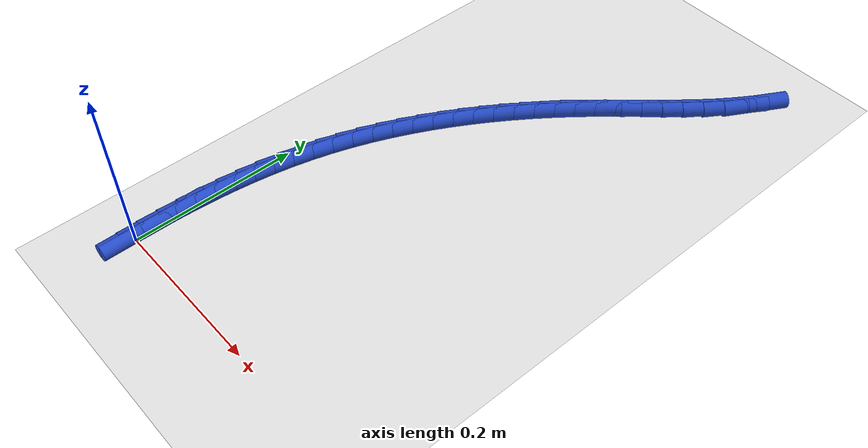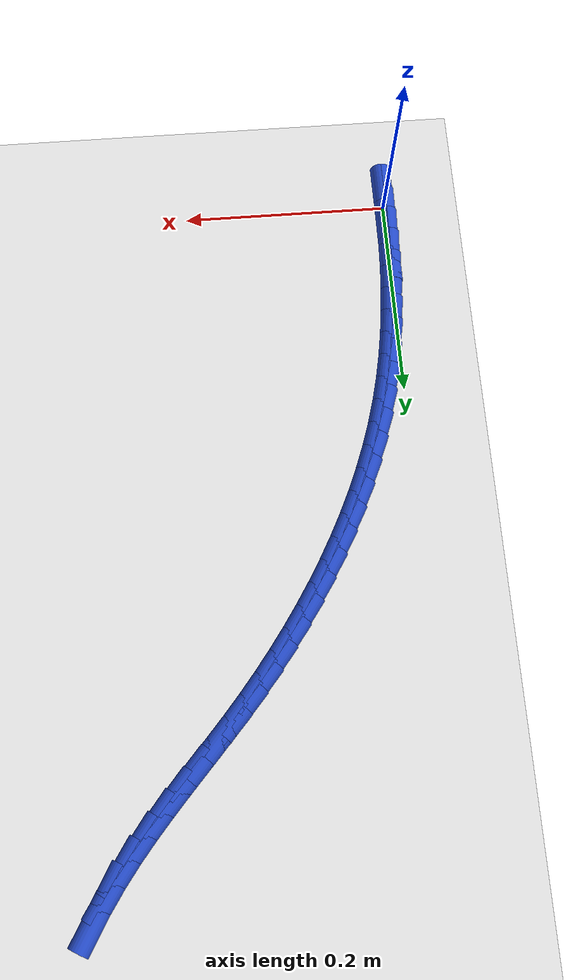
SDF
<sdf version="1.6">
 <world name="default">
  <model name="ground_plane">
   <static>1</static>
   <link name="link">
    <collision name="collision">
     <geometry><plane><normal>0 0 1</normal><size>100 100</size></plane></geometry>
     <surface><friction><ode><mu>100</mu><mu2>50</mu2></ode></friction></surface>
    </collision>
    <visual name="visual">
     <cast_shadows>0</cast_shadows>
     <geometry><plane><normal>0 0 1</normal><size>100 100</size></plane></geometry>
     <material>
      <script><uri>file://media/materials/scripts/gazebo.material</uri><name>Gazebo/WhiteGlow</name></script>
     </material>
    </visual>
   </link>
  </model>
  <model name="line">
   <link name="link_0">
    <pose>-3.469446951953614e-18 -6.938893903907228e-18 0.01 0 1.57 -1.5668092946791665</pose>
    <collision name="collision">
     <geometry><cylinder><radius>0.01</radius><length>0.08</length></cylinder></geometry>
    </collision>
    <visual name="visual">
     <material>
      <script><name>Gazebo/Blue</name><uri>file://media/materials/scripts/gazebo.material</uri></script>
     </material>
     <geometry><cylinder><radius>0.01</radius><length>0.08</length></cylinder></geometry>
    </visual>
   </link>
   <link name="link_1">
    <pose>-9.668770848406657e-05 0.024250418192624773 0.01 0 1.57 1.5519842807327624</pose>
    <collision name="collision">
     <geometry><cylinder><radius>0.01</radius><length>0.08</length></cylinder></geometry>
    </collision>
    <visual name="visual">
     <material>
      <script><name>Gazebo/Blue</name><uri>file://media/materials/scripts/gazebo.material</uri></script>
     </material>
     <geometry><cylinder><radius>0.01</radius><length>0.08</length></cylinder></geometry>
    </visual>
   </link>
   <link name="link_2">
    <pose>0.00035997045068854154 0.048522328170225275 0.01 0 1.57 1.5270778236447393</pose>
    <collision name="collision">
     <geometry><cylinder><radius>0.01</radius><length>0.08</length></cylinder></geometry>
    </collision>
    <visual name="visual">
     <material>
      <script><name>Gazebo/Blue</name><uri>file://media/materials/scripts/gazebo.material</uri></script>
     </material>
     <geometry><cylinder><radius>0.01</radius><length>0.08</length></cylinder></geometry>
    </visual>
   </link>
   <link name="link_3">
    <pose>0.0014212684066295792 0.07278257584016903 0.01 0 1.57 1.5000000762777668</pose>
    <collision name="collision">
     <geometry><cylinder><radius>0.01</radius><length>0.08</length></cylinder></geometry>
    </collision>
    <visual name="visual">
     <material>
      <script><name>Gazebo/Blue</name><uri>file://media/materials/scripts/gazebo.material</uri></script>
     </material>
     <geometry><cylinder><radius>0.01</radius><length>0.08</length></cylinder></geometry>
    </visual>
   </link>
   <link name="link_4">
    <pose>0.0031385000884508072 0.09699800710982365 0.01 0 1.57 1.470688244465977</pose>
    <collision name="collision">
     <geometry><cylinder><radius>0.01</radius><length>0.08</length></cylinder></geometry>
    </collision>
    <visual name="visual">
     <material>
      <script><name>Gazebo/Blue</name><uri>file://media/materials/scripts/gazebo.material</uri></script>
     </material>
     <geometry><cylinder><radius>0.01</radius><length>0.08</length></cylinder></geometry>
    </visual>
   </link>
   <link name="link_5">
    <pose>0.005562959425263985 0.12113546788655669 0.01 0 1.57 1.439084465270947</pose>
    <collision name="collision">
     <geometry><cylinder><radius>0.01</radius><length>0.08</length></cylinder></geometry>
    </collision>
    <visual name="visual">
     <material>
      <script><name>Gazebo/Blue</name><uri>file://media/materials/scripts/gazebo.material</uri></script>
     </material>
     <geometry><cylinder><radius>0.01</radius><length>0.08</length></cylinder></geometry>
    </visual>
   </link>
   <link name="link_6">
    <pose>0.008745940346180871 0.14516180407773566 0.01 0 1.57 1.4051403267500029</pose>
    <collision name="collision">
     <geometry><cylinder><radius>0.01</radius><length>0.08</length></cylinder></geometry>
    </collision>
    <visual name="visual">
     <material>
      <script><name>Gazebo/Blue</name><uri>file://media/materials/scripts/gazebo.material</uri></script>
     </material>
     <geometry><cylinder><radius>0.01</radius><length>0.08</length></cylinder></geometry>
    </visual>
   </link>
   <link name="link_7">
    <pose>0.012738736780313228 0.16904386159072818 0.01 0 1.57 1.368822113248768</pose>
    <collision name="collision">
     <geometry><cylinder><radius>0.01</radius><length>0.08</length></cylinder></geometry>
    </collision>
    <visual name="visual">
     <material>
      <script><name>Gazebo/Blue</name><uri>file://media/materials/scripts/gazebo.material</uri></script>
     </material>
     <geometry><cylinder><radius>0.01</radius><length>0.08</length></cylinder></geometry>
    </visual>
   </link>
   <link name="link_8">
    <pose>0.01759264265677282 0.19274848633290176 0.01 0 1.57 1.3301167178738849</pose>
    <collision name="collision">
     <geometry><cylinder><radius>0.01</radius><length>0.08</length></cylinder></geometry>
    </collision>
    <visual name="visual">
     <material>
      <script><name>Gazebo/Blue</name><uri>file://media/materials/scripts/gazebo.material</uri></script>
     </material>
     <geometry><cylinder><radius>0.01</radius><length>0.08</length></cylinder></geometry>
    </visual>
   </link>
   <link name="link_9">
    <pose>0.023358951904671386 0.21624252421162393 0.01 0 1.57 1.2892994654592975</pose>
    <collision name="collision">
     <geometry><cylinder><radius>0.01</radius><length>0.08</length></cylinder></geometry>
    </collision>
    <visual name="visual">
     <material>
      <script><name>Gazebo/Blue</name><uri>file://media/materials/scripts/gazebo.material</uri></script>
     </material>
     <geometry><cylinder><radius>0.01</radius><length>0.08</length></cylinder></geometry>
    </visual>
   </link>
   <link name="link_10">
    <pose>0.030082690617742054 0.23949392359543983 0.01 0 1.57 1.2488211043745432</pose>
    <collision name="collision">
     <geometry><cylinder><radius>0.01</radius><length>0.08</length></cylinder></geometry>
    </collision>
    <visual name="visual">
     <material>
      <script><name>Gazebo/Blue</name><uri>file://media/materials/scripts/gazebo.material</uri></script>
     </material>
     <geometry><cylinder><radius>0.01</radius><length>0.08</length></cylinder></geometry>
    </visual>
   </link>
   <link name="link_11">
    <pose>0.03775074137843482 0.2624808598228182 0.01 0 1.57 1.2099850160552432</pose>
    <collision name="collision">
     <geometry><cylinder><radius>0.01</radius><length>0.08</length></cylinder></geometry>
    </collision>
    <visual name="visual">
     <material>
      <script><name>Gazebo/Blue</name><uri>file://media/materials/scripts/gazebo.material</uri></script>
     </material>
     <geometry><cylinder><radius>0.01</radius><length>0.08</length></cylinder></geometry>
    </visual>
   </link>
   <link name="link_12">
    <pose>0.04631845590246985 0.2851870542547955 0.01 0 1.57 1.1727685198565179</pose>
    <collision name="collision">
     <geometry><cylinder><radius>0.01</radius><length>0.08</length></cylinder></geometry>
    </collision>
    <visual name="visual">
     <material>
      <script><name>Gazebo/Blue</name><uri>file://media/materials/scripts/gazebo.material</uri></script>
     </material>
     <geometry><cylinder><radius>0.01</radius><length>0.08</length></cylinder></geometry>
    </visual>
   </link>
   <link name="link_13">
    <pose>0.05574087382757215 0.3075962831443847 0.01 0 1.57 1.1371211900026525</pose>
    <collision name="collision">
     <geometry><cylinder><radius>0.01</radius><length>0.08</length></cylinder></geometry>
    </collision>
    <visual name="visual">
     <material>
      <script><name>Gazebo/Blue</name><uri>file://media/materials/scripts/gazebo.material</uri></script>
     </material>
     <geometry><cylinder><radius>0.01</radius><length>0.08</length></cylinder></geometry>
    </visual>
   </link>
   <link name="link_14">
    <pose>0.06597303479146674 0.32969232274459914 0.01 0 1.57 1.1029811296559364</pose>
    <collision name="collision">
     <geometry><cylinder><radius>0.01</radius><length>0.08</length></cylinder></geometry>
    </collision>
    <visual name="visual">
     <material>
      <script><name>Gazebo/Blue</name><uri>file://media/materials/scripts/gazebo.material</uri></script>
     </material>
     <geometry><cylinder><radius>0.01</radius><length>0.08</length></cylinder></geometry>
    </visual>
   </link>
   <link name="link_15">
    <pose>0.07696997843187864 0.35145894930845145 0.01 0 1.57 1.0702778177255967</pose>
    <collision name="collision">
     <geometry><cylinder><radius>0.01</radius><length>0.08</length></cylinder></geometry>
    </collision>
    <visual name="visual">
     <material>
      <script><name>Gazebo/Blue</name><uri>file://media/materials/scripts/gazebo.material</uri></script>
     </material>
     <geometry><cylinder><radius>0.01</radius><length>0.08</length></cylinder></geometry>
    </visual>
   </link>
   <link name="link_16">
    <pose>0.08868674438653286 0.3728799390889551 0.01 0 1.57 1.038934515289923</pose>
    <collision name="collision">
     <geometry><cylinder><radius>0.01</radius><length>0.08</length></cylinder></geometry>
    </collision>
    <visual name="visual">
     <material>
      <script><name>Gazebo/Blue</name><uri>file://media/materials/scripts/gazebo.material</uri></script>
     </material>
     <geometry><cylinder><radius>0.01</radius><length>0.08</length></cylinder></geometry>
    </visual>
   </link>
   <link name="link_17">
    <pose>0.10107837229315449 0.3939390683391231 0.01 0 1.57 1.008870235082473</pose>
    <collision name="collision">
     <geometry><cylinder><radius>0.01</radius><length>0.08</length></cylinder></geometry>
    </collision>
    <visual name="visual">
     <material>
      <script><name>Gazebo/Blue</name><uri>file://media/materials/scripts/gazebo.material</uri></script>
     </material>
     <geometry><cylinder><radius>0.01</radius><length>0.08</length></cylinder></geometry>
    </visual>
   </link>
   <link name="link_18">
    <pose>0.1140999017894685 0.4146201133119686 0.01 0 1.57 0.9800012986721532</pose>
    <collision name="collision">
     <geometry><cylinder><radius>0.01</radius><length>0.08</length></cylinder></geometry>
    </collision>
    <visual name="visual">
     <material>
      <script><name>Gazebo/Blue</name><uri>file://media/materials/scripts/gazebo.material</uri></script>
     </material>
     <geometry><cylinder><radius>0.01</radius><length>0.08</length></cylinder></geometry>
    </visual>
   </link>
   <link name="link_19">
    <pose>0.12770637251319994 0.4349068502605046 0.01 0 1.57 0.9522425177753259</pose>
    <collision name="collision">
     <geometry><cylinder><radius>0.01</radius><length>0.08</length></cylinder></geometry>
    </collision>
    <visual name="visual">
     <material>
      <script><name>Gazebo/Blue</name><uri>file://media/materials/scripts/gazebo.material</uri></script>
     </material>
     <geometry><cylinder><radius>0.01</radius><length>0.08</length></cylinder></geometry>
    </visual>
   </link>
   <link name="link_20">
    <pose>0.14185282410207378 0.4547830554377442 0.01 0 1.57 0.9255080408733608</pose>
    <collision name="collision">
     <geometry><cylinder><radius>0.01</radius><length>0.08</length></cylinder></geometry>
    </collision>
    <visual name="visual">
     <material>
      <script><name>Gazebo/Blue</name><uri>file://media/materials/scripts/gazebo.material</uri></script>
     </material>
     <geometry><cylinder><radius>0.01</radius><length>0.08</length></cylinder></geometry>
    </visual>
   </link>
   <link name="link_21">
    <pose>0.1564942961938151 0.47423250509670056 0.01 0 1.57 0.8997119060340567</pose>
    <collision name="collision">
     <geometry><cylinder><radius>0.01</radius><length>0.08</length></cylinder></geometry>
    </collision>
    <visual name="visual">
     <material>
      <script><name>Gazebo/Blue</name><uri>file://media/materials/scripts/gazebo.material</uri></script>
     </material>
     <geometry><cylinder><radius>0.01</radius><length>0.08</length></cylinder></geometry>
    </visual>
   </link>
   <link name="link_22">
    <pose>0.17158582842614895 0.49323897549038664 0.01 0 1.57 0.8748506183977571</pose>
    <collision name="collision">
     <geometry><cylinder><radius>0.01</radius><length>0.08</length></cylinder></geometry>
    </collision>
    <visual name="visual">
     <material>
      <script><name>Gazebo/Blue</name><uri>file://media/materials/scripts/gazebo.material</uri></script>
     </material>
     <geometry><cylinder><radius>0.01</radius><length>0.08</length></cylinder></geometry>
    </visual>
   </link>
   <link name="link_23">
    <pose>0.18708140227971518 0.511788078097146 0.01 0 1.57 0.8544965456955175</pose>
    <collision name="collision">
     <geometry><cylinder><radius>0.01</radius><length>0.08</length></cylinder></geometry>
    </collision>
    <visual name="visual">
     <material>
      <script><name>Gazebo/Blue</name><uri>file://media/materials/scripts/gazebo.material</uri></script>
     </material>
     <geometry><cylinder><radius>0.01</radius><length>0.08</length></cylinder></geometry>
    </visual>
   </link>
   <link name="link_24">
    <pose>0.20288858191789733 0.5299459287340376 0.01 0 1.57 0.8437326135148264</pose>
    <collision name="collision">
     <geometry><cylinder><radius>0.01</radius><length>0.08</length></cylinder></geometry>
    </collision>
    <visual name="visual">
     <material>
      <script><name>Gazebo/Blue</name><uri>file://media/materials/scripts/gazebo.material</uri></script>
     </material>
     <geometry><cylinder><radius>0.01</radius><length>0.08</length></cylinder></geometry>
    </visual>
   </link>
   <link name="link_25">
    <pose>0.2188513869444735 0.5478888523610089 0.01 0 1.57 0.8430376336138947</pose>
    <collision name="collision">
     <geometry><cylinder><radius>0.01</radius><length>0.08</length></cylinder></geometry>
    </collision>
    <visual name="visual">
     <material>
      <script><name>Gazebo/Blue</name><uri>file://media/materials/scripts/gazebo.material</uri></script>
     </material>
     <geometry><cylinder><radius>0.01</radius><length>0.08</length></cylinder></geometry>
    </visual>
   </link>
   <link name="link_26">
    <pose>0.23480924708758877 0.5658011344347458 0.01 0 1.57 0.8524474503521972</pose>
    <collision name="collision">
     <geometry><cylinder><radius>0.01</radius><length>0.08</length></cylinder></geometry>
    </collision>
    <visual name="visual">
     <material>
      <script><name>Gazebo/Blue</name><uri>file://media/materials/scripts/gazebo.material</uri></script>
     </material>
     <geometry><cylinder><radius>0.01</radius><length>0.08</length></cylinder></geometry>
    </visual>
   </link>
   <link name="link_27">
    <pose>0.25060159207538807 0.5838670604119339 0.01 0 1.57 0.8719128689359373</pose>
    <collision name="collision">
     <geometry><cylinder><radius>0.01</radius><length>0.08</length></cylinder></geometry>
    </collision>
    <visual name="visual">
     <material>
      <script><name>Gazebo/Blue</name><uri>file://media/materials/scripts/gazebo.material</uri></script>
     </material>
     <geometry><cylinder><radius>0.01</radius><length>0.08</length></cylinder></geometry>
    </visual>
   </link>
   <link name="link_28">
    <pose>0.26606785163601654 0.6022709157492596 0.01 0 1.57 0.9012722103933641</pose>
    <collision name="collision">
     <geometry><cylinder><radius>0.01</radius><length>0.08</length></cylinder></geometry>
    </collision>
    <visual name="visual">
     <material>
      <script><name>Gazebo/Blue</name><uri>file://media/materials/scripts/gazebo.material</uri></script>
     </material>
     <geometry><cylinder><radius>0.01</radius><length>0.08</length></cylinder></geometry>
    </visual>
   </link>
   <link name="link_29">
    <pose>0.28104745549761906 0.6211969859034085 0.01 0 1.57 0.9401985837215712</pose>
    <collision name="collision">
     <geometry><cylinder><radius>0.01</radius><length>0.08</length></cylinder></geometry>
    </collision>
    <visual name="visual">
     <material>
      <script><name>Gazebo/Blue</name><uri>file://media/materials/scripts/gazebo.material</uri></script>
     </material>
     <geometry><cylinder><radius>0.01</radius><length>0.08</length></cylinder></geometry>
    </visual>
   </link>
   <link name="link_30">
    <pose>0.2953798333883409 0.640829556331067 0.01 0 1.57 0.9881307462801164</pose>
    <collision name="collision">
     <geometry><cylinder><radius>0.01</radius><length>0.08</length></cylinder></geometry>
    </collision>
    <visual name="visual">
     <material>
      <script><name>Gazebo/Blue</name><uri>file://media/materials/scripts/gazebo.material</uri></script>
     </material>
     <geometry><cylinder><radius>0.01</radius><length>0.08</length></cylinder></geometry>
    </visual>
   </link>
   <link name="link_31">
    <pose>0.3089044150363268 0.6613529124889203 0.01 0 1.57 1.0441260735722115</pose>
    <collision name="collision">
     <geometry><cylinder><radius>0.01</radius><length>0.08</length></cylinder></geometry>
    </collision>
    <visual name="visual">
     <material>
      <script><name>Gazebo/Blue</name><uri>file://media/materials/scripts/gazebo.material</uri></script>
     </material>
     <geometry><cylinder><radius>0.01</radius><length>0.08</length></cylinder></geometry>
    </visual>
   </link>
   <link name="link_280">
    <pose>-9.107298248878237e-18 1.5265566588595902e-16 0.01 0 1.57 -1.5664472947522836</pose>
    <collision name="collision">
     <geometry><cylinder><radius>0.01</radius><length>0.08</length></cylinder></geometry>
    </collision>
    <visual name="visual">
     <material>
      <script><name>Gazebo/Blue</name><uri>file://media/materials/scripts/gazebo.material</uri></script>
     </material>
     <geometry><cylinder><radius>0.01</radius><length>0.08</length></cylinder></geometry>
    </visual>
   </link>
   <link name="link_281">
    <pose>-0.00010549215096034795 0.024256313779759675 0.01 0 1.57 1.5545503103344813</pose>
    <collision name="collision">
     <geometry><cylinder><radius>0.01</radius><length>0.08</length></cylinder></geometry>
    </collision>
    <visual name="visual">
     <material>
      <script><name>Gazebo/Blue</name><uri>file://media/materials/scripts/gazebo.material</uri></script>
     </material>
     <geometry><cylinder><radius>0.01</radius><length>0.08</length></cylinder></geometry>
    </visual>
   </link>
   <link name="link_282">
    <pose>0.00028953491087830565 0.04856949286730379 0.01 0 1.57 1.5648351469642565</pose>
    <collision name="collision">
     <geometry><cylinder><radius>0.01</radius><length>0.08</length></cylinder></geometry>
    </collision>
    <visual name="visual">
     <material>
      <script><name>Gazebo/Blue</name><uri>file://media/materials/scripts/gazebo.material</uri></script>
     </material>
     <geometry><cylinder><radius>0.01</radius><length>0.08</length></cylinder></geometry>
    </visual>
   </link>
  </model>
 </world>
</sdf>
